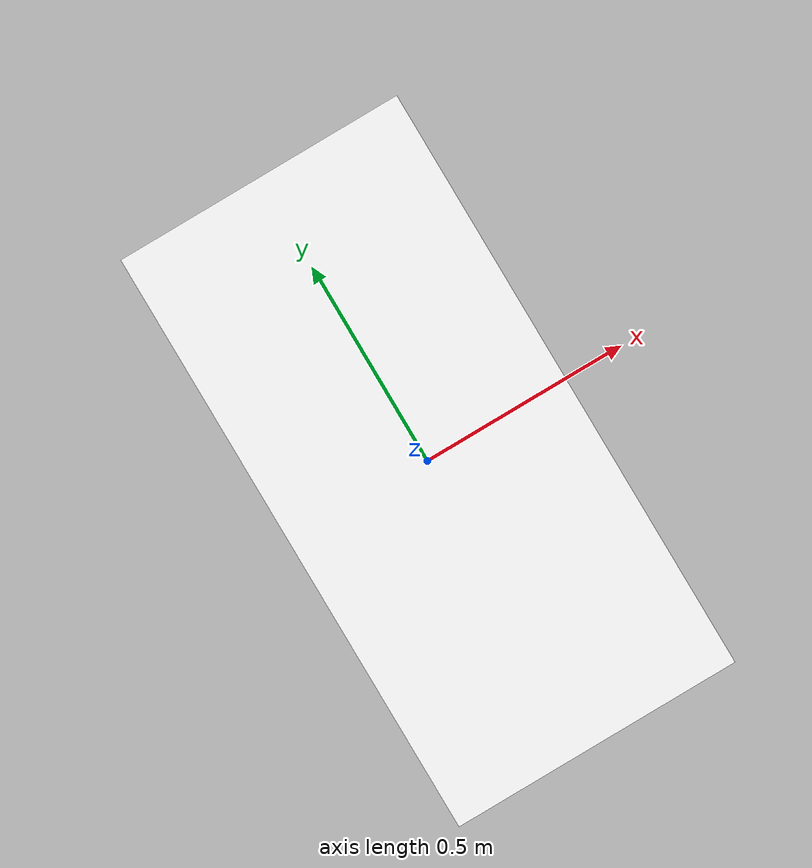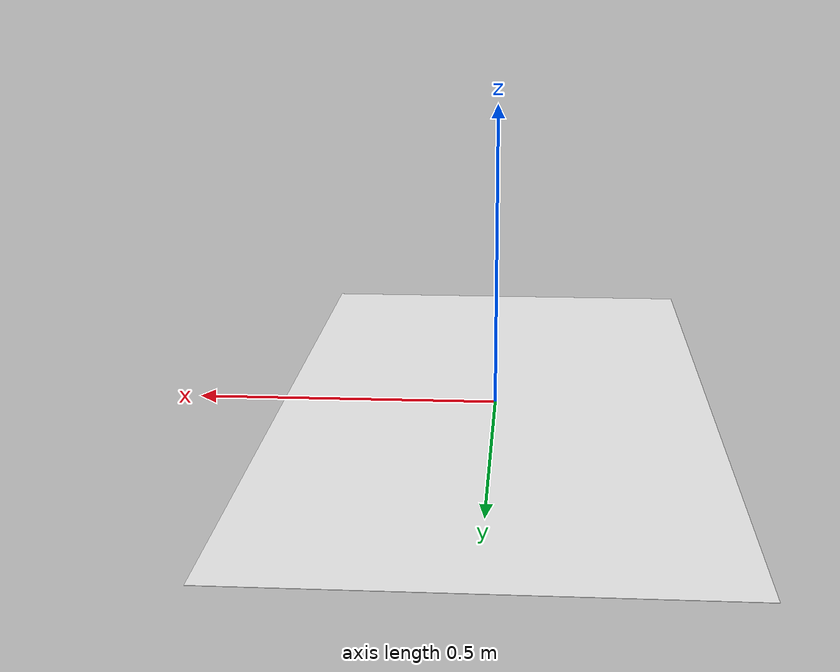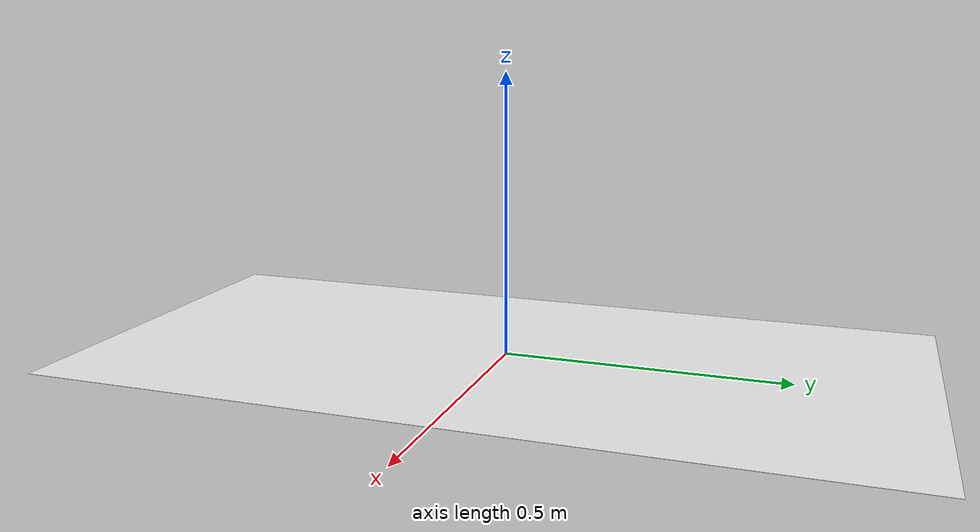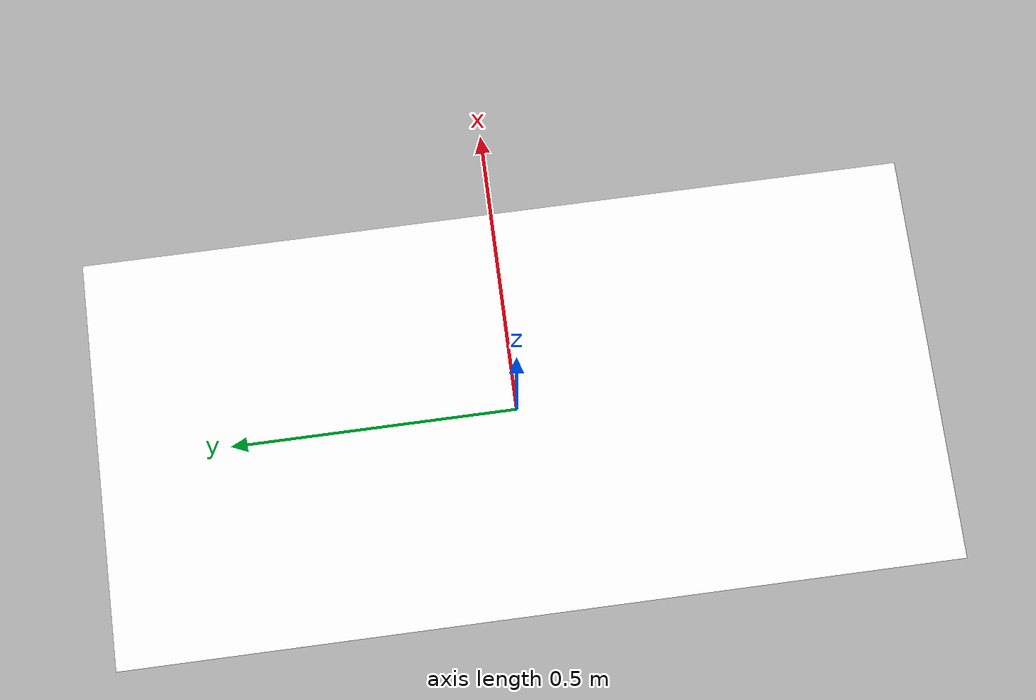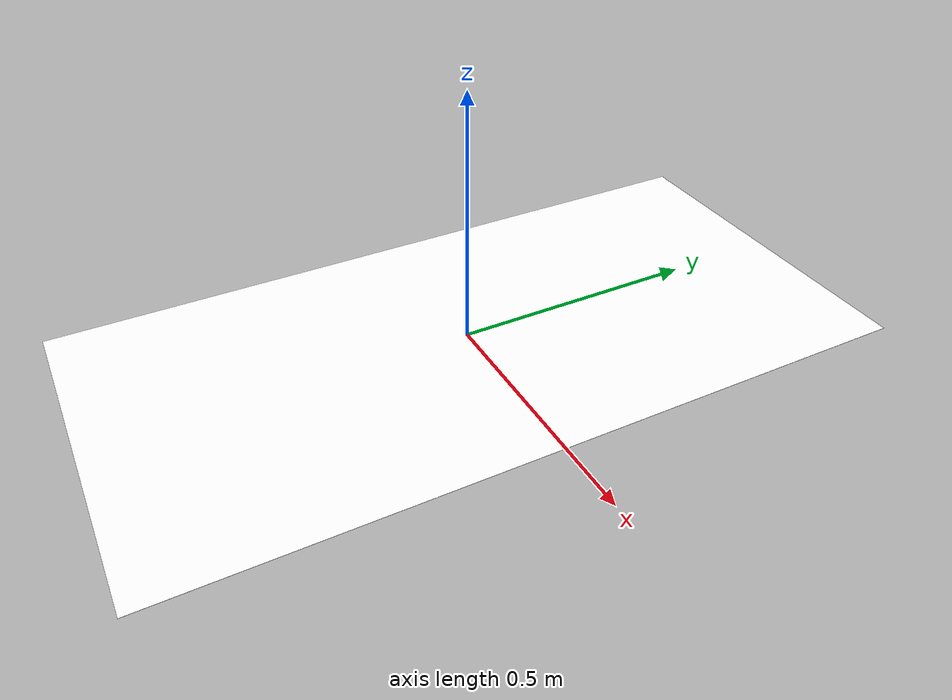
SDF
<?xml version='1.0'?>
<sdf version='1.6'>
  <model name='race_track6'>
    <static>true</static>
    <link name='link'>
      <visual name='visual'>
        <geometry>
          <box>
            <size>0.712 1.462 0.000553</size>
          </box>
        </geometry>
        <material>
          <script>
            <name>RaceTrack6/track6</name>
	    <uri>model://racetrack6/materials/scripts</uri>
            <uri>model://racetrack6/materials/textures</uri>
          </script>
          <ambient>1 1 1 1</ambient>
          <diffuse>1 1 1 1</diffuse>
          <specular>0.01 0.01 0.01 1</specular>
          <emissive>1 1 1 1</emissive>
        </material>
        <transparency>0</transparency>
      </visual>
      <collision name='collision'>
        <geometry>
          <box>
            <size>0.712 1.462 0.000553</size>
          </box>
        </geometry>
	<surface>
          <friction>
            <ode>
              <mu>100</mu>
              <mu2>50</mu2>
            </ode>
          </friction>
        </surface>
      </collision>
    </link>
  </model>
</sdf>
